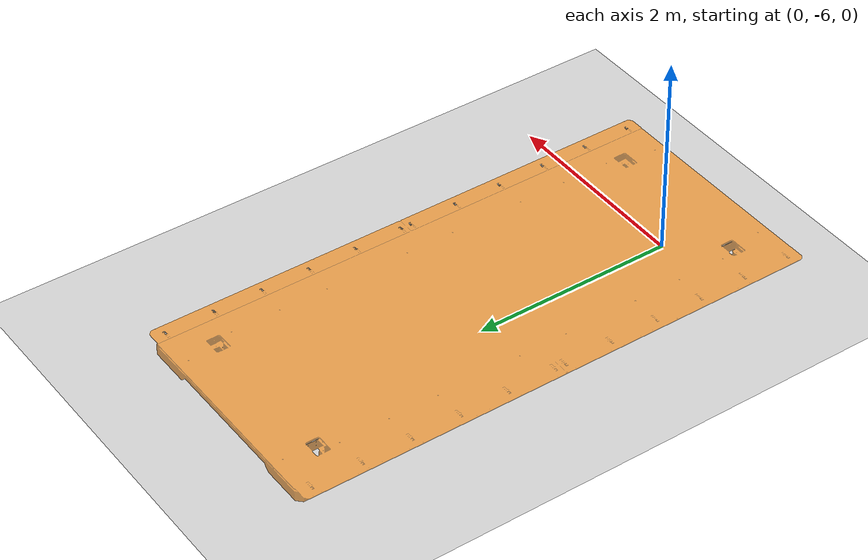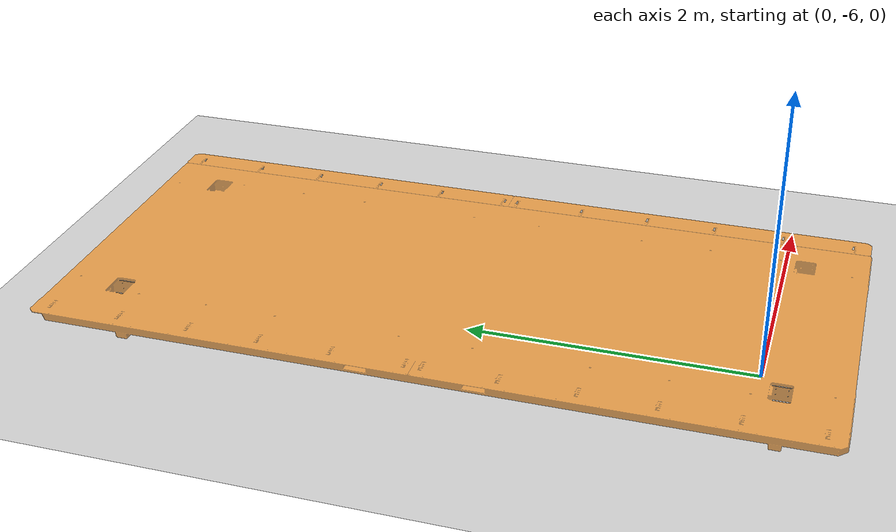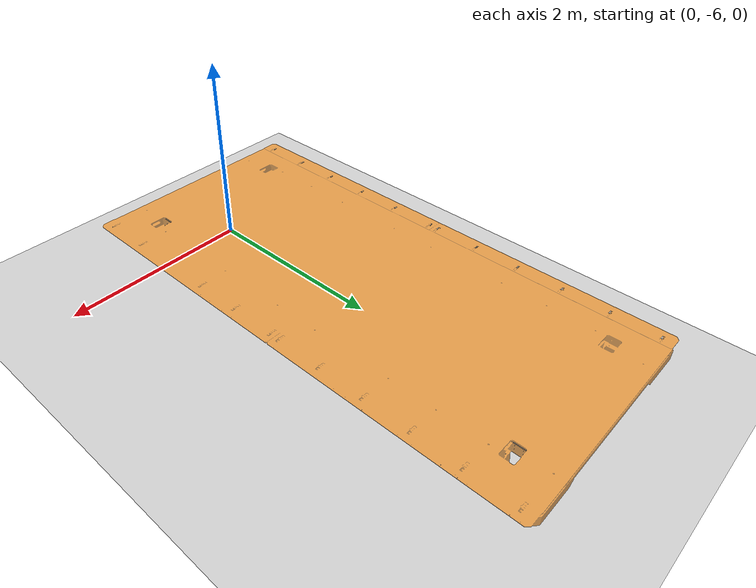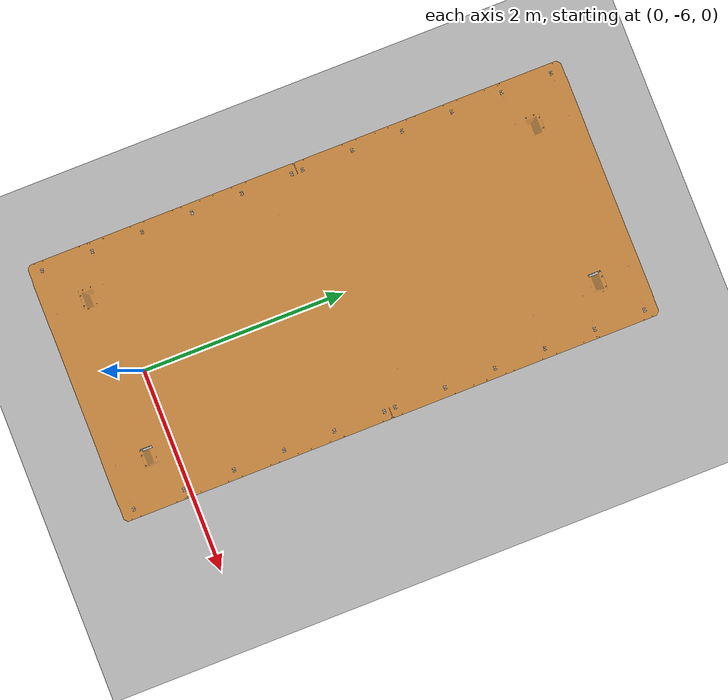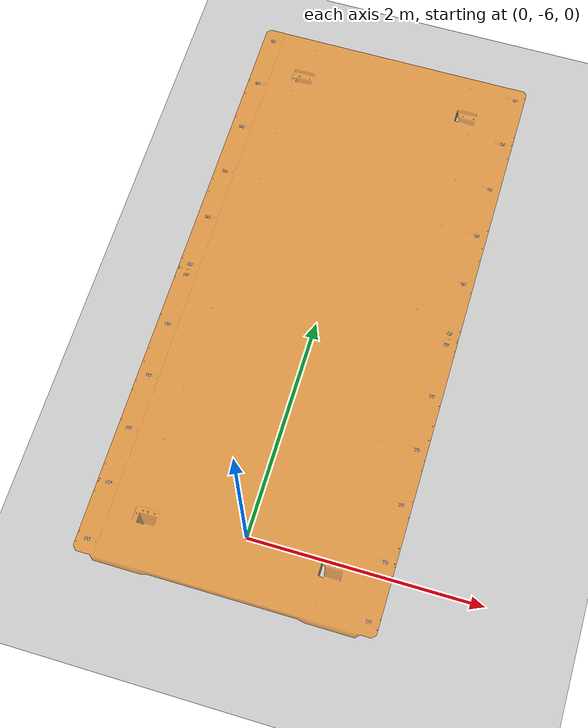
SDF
<?xml version="1.0"?>
<sdf version="1.4">
  <world name="default">
    <include>
      <uri>model://ground_plane</uri>
    </include>
    <include>
      <uri>model://sun</uri>
    </include>

    <!-- Tray -->
    <include>
      <uri>model://tray</uri>
      <name>tray_model</name>
      <pose>0 -4 0  0 0 0</pose>
    </include>

  </world>
</sdf>

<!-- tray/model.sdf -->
<sdf version='1.7'>
  <model name='tray'>
    <link name='tray_link'>
      <inertial>
        <mass>1</mass>
        <inertia>
          <ixx>0.166667</ixx>
          <ixy>0</ixy>
          <ixz>0</ixz>
          <iyy>0.166667</iyy>
          <iyz>0</iyz>
          <izz>0.166667</izz>
        </inertia>
      </inertial>
      <pose>0 0 0.3 0 0 0</pose>
      <visual name='visual'>
        <pose>0 0 -0.263525 0 0 1.570796</pose>
        <geometry>
          <mesh>
            <uri>meshes/tray.stl</uri>
            <scale>1 1 1</scale>
          </mesh>
        </geometry>
        <material>
          <lighting>1</lighting>
          <script>
            <uri>file://media/materials/scripts/gazebo.material</uri>
            <name>Gazebo/Orange</name>
          </script>
          <shader type='pixel'/>
        </material>
        <transparency>0.3</transparency>
        <cast_shadows>1</cast_shadows>
      </visual>
      <collision name='collision'>
        <laser_retro>0</laser_retro>
        <max_contacts>10</max_contacts>
        <pose>0 0 -0.263525 0 0 1.570796</pose>
        <geometry>
          <mesh>
            <uri>meshes/tray.stl</uri>
            <scale>1 1 1</scale>
          </mesh>
        </geometry>
        <surface>
          <friction>
            <ode>
              <mu>1</mu>
              <mu2>1</mu2>
              <fdir1>0 0 0</fdir1>
              <slip1>0</slip1>
              <slip2>0</slip2>
            </ode>
            <torsional>
              <coefficient>1</coefficient>
              <patch_radius>0</patch_radius>
              <surface_radius>0</surface_radius>
              <use_patch_radius>1</use_patch_radius>
              <ode>
                <slip>0</slip>
              </ode>
            </torsional>
          </friction>
          <bounce>
            <restitution_coefficient>0</restitution_coefficient>
            <threshold>1e+06</threshold>
          </bounce>
          <contact>
            <collide_without_contact>0</collide_without_contact>
            <collide_without_contact_bitmask>1</collide_without_contact_bitmask>
            <collide_bitmask>1</collide_bitmask>
            <ode>
              <soft_cfm>3</soft_cfm>
              <soft_erp>0.1</soft_erp>
              <kp>1e+5</kp>
              <kd>1</kd>
              <max_vel>0.01</max_vel>
              <min_depth>0</min_depth>
            </ode>
            <bullet>
              <split_impulse>1</split_impulse>
              <split_impulse_penetration_threshold>-0.01</split_impulse_penetration_threshold>
              <soft_cfm>3</soft_cfm>
              <soft_erp>0.1</soft_erp>
              <kp>1e+5</kp>
              <kd>1</kd>
            </bullet>
          </contact>
        </surface>
      </collision>
    </link>
    <static>true</static>
    <allow_auto_disable>1</allow_auto_disable>
  </model>
</sdf>
